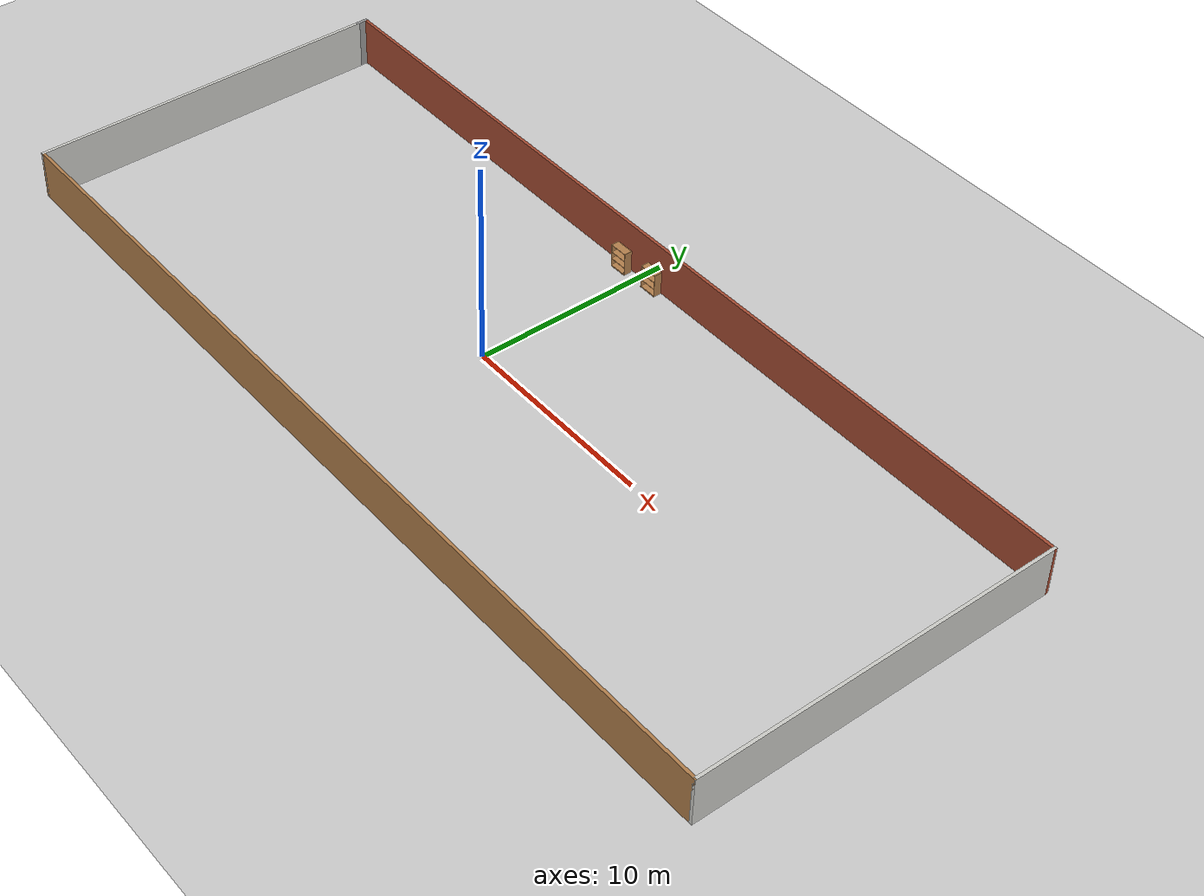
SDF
<sdf version="1.6">
 <world name="default">
  <light name="sun" type="directional">
   <pose>0 0 10 0 -0 0</pose>
   <diffuse>0.8 0.8 0.8 1</diffuse>
   <specular>0.2 0.2 0.2 1</specular>
   <attenuation>
    <range>1000</range>
    <constant>0.9</constant>
    <linear>0.01</linear>
    <quadratic>0.001</quadratic>
   </attenuation>
   <direction>-0.5 0.1 -0.9</direction>
  </light>
  <model name="ground_plane">
   <static>1</static>
   <link name="link">
    <collision name="collision">
     <geometry><plane><normal>0 0 1</normal><size>100 100</size></plane></geometry>
     <surface><friction><ode><mu>100</mu><mu2>50</mu2></ode></friction></surface>
    </collision>
    <visual name="visual">
     <cast_shadows>0</cast_shadows>
     <geometry><plane><normal>0 0 1</normal><size>100 100</size></plane></geometry>
     <material>
      <script><uri>file://media/materials/scripts/gazebo.material</uri><name>Gazebo/Grey</name></script>
     </material>
    </visual>
   </link>
  </model>
  <gravity>0 0 -9.8</gravity>
  <magnetic_field>6e-06 2.3e-05 -4.2e-05</magnetic_field>
  <atmosphere type="adiabatic"/>
  <physics name="default_physics" default="0" type="ode">
   <max_step_size>0.001</max_step_size>
   <real_time_factor>1</real_time_factor>
   <real_time_update_rate>1000</real_time_update_rate>
  </physics>
  <scene><ambient>0.4 0.4 0.4 1</ambient><background>0.7 0.7 0.7 1</background><shadows>1</shadows></scene>
  <spherical_coordinates>
   <surface_model>EARTH_WGS84</surface_model>
   <latitude_deg>0</latitude_deg>
   <longitude_deg>0</longitude_deg>
   <elevation>0</elevation>
   <heading_deg>0</heading_deg>
  </spherical_coordinates>
  <model name="indoor1">
   <pose>1.50485 -0.122518 0 0 -0 0</pose>
   <link name="Wall_1">
    <collision name="Wall_1_Collision">
     <geometry><box><size>17.75 0.15 2.5</size></box></geometry>
     <pose>0 0 1.25 0 -0 0</pose>
    </collision>
    <visual name="Wall_1_Visual">
     <pose>0 0 1.25 0 -0 0</pose>
     <geometry><box><size>17.75 0.15 2.5</size></box></geometry>
     <material>
      <script><uri>file://media/materials/scripts/gazebo.material</uri><name>Gazebo/CeilingTiled</name></script>
      <ambient>1 1 1 1</ambient>
     </material>
     <meta><layer>0</layer></meta>
    </visual>
    <pose>-22.8 -0.25 0 0 -0 -1.5708</pose>
   </link>
   <link name="Wall_2">
    <collision name="Wall_2_Collision">
     <geometry><box><size>45.75 0.15 2.5</size></box></geometry>
     <pose>0 0 1.25 0 -0 0</pose>
    </collision>
    <visual name="Wall_2_Visual">
     <pose>0 0 1.25 0 -0 0</pose>
     <geometry><box><size>45.75 0.15 2.5</size></box></geometry>
     <material>
      <script><uri>file://media/materials/scripts/gazebo.material</uri><name>Gazebo/Wood</name></script>
      <ambient>1 1 1 1</ambient>
     </material>
     <meta><layer>0</layer></meta>
    </visual>
    <pose>-0 -9.05 0 0 -0 0</pose>
   </link>
   <link name="Wall_3">
    <collision name="Wall_3_Collision">
     <geometry><box><size>18.25 0.15 2.5</size></box></geometry>
     <pose>0 0 1.25 0 -0 0</pose>
    </collision>
    <visual name="Wall_3_Visual">
     <pose>0 0 1.25 0 -0 0</pose>
     <geometry><box><size>18.25 0.15 2.5</size></box></geometry>
     <material>
      <script><uri>file://media/materials/scripts/gazebo.material</uri><name>Gazebo/CeilingTiled</name></script>
      <ambient>0.435294 0.796078 0.67451 1</ambient>
     </material>
     <meta><layer>0</layer></meta>
    </visual>
    <pose>22.8 0 0 0 -0 1.5708</pose>
   </link>
   <link name="Wall_4">
    <collision name="Wall_4_Collision">
     <geometry><box><size>45.75 0.15 2.5</size></box></geometry>
     <pose>0 0 1.25 0 -0 0</pose>
    </collision>
    <visual name="Wall_4_Visual">
     <pose>0 0 1.25 0 -0 0</pose>
     <geometry><box><size>45.75 0.15 2.5</size></box></geometry>
     <material>
      <script><uri>file://media/materials/scripts/gazebo.material</uri><name>Gazebo/Bricks</name></script>
      <ambient>1 1 1 1</ambient>
     </material>
     <meta><layer>0</layer></meta>
    </visual>
    <pose>-0 9.05 0 0 -0 3.14159</pose>
   </link>
   <link name="Wall_5">
    <collision name="Wall_5_Collision">
     <geometry><box><size>0.65 0.15 2.5</size></box></geometry>
     <pose>0 0 1.25 0 -0 0</pose>
    </collision>
    <visual name="Wall_5_Visual">
     <pose>0 0 1.25 0 -0 0</pose>
     <geometry><box><size>0.65 0.15 2.5</size></box></geometry>
     <material>
      <script><uri>file://media/materials/scripts/gazebo.material</uri><name>Gazebo/Grey</name></script>
      <ambient>1 1 1 1</ambient>
     </material>
     <meta><layer>0</layer></meta>
    </visual>
    <pose>-22.8 8.8 0 0 -0 -1.5708</pose>
   </link>
   <static>1</static>
  </model>
  <model name="bookshelf">
   <static>1</static>
   <link name="link">
    <inertial><mass>1</mass></inertial>
    <collision name="back">
     <pose>0 0.005 0.6 0 -0 0</pose>
     <geometry><box><size>0.9 0.01 1.2</size></box></geometry>
    </collision>
    <visual name="visual1">
     <pose>0 0.005 0.6 0 -0 0</pose>
     <geometry><box><size>0.9 0.01 1.2</size></box></geometry>
     <material>
      <script><uri>file://media/materials/scripts/gazebo.material</uri><name>Gazebo/Wood</name></script>
     </material>
    </visual>
    <collision name="left_side">
     <pose>0.45 -0.195 0.6 0 -0 0</pose>
     <geometry><box><size>0.02 0.4 1.2</size></box></geometry>
    </collision>
    <visual name="visual2">
     <pose>0.45 -0.195 0.6 0 -0 0</pose>
     <geometry><box><size>0.02 0.4 1.2</size></box></geometry>
     <material>
      <script><uri>file://media/materials/scripts/gazebo.material</uri><name>Gazebo/Wood</name></script>
     </material>
    </visual>
    <collision name="right_side">
     <pose>-0.45 -0.195 0.6 0 -0 0</pose>
     <geometry><box><size>0.02 0.4 1.2</size></box></geometry>
    </collision>
    <visual name="visual3">
     <pose>-0.45 -0.195 0.6 0 -0 0</pose>
     <geometry><box><size>0.02 0.4 1.2</size></box></geometry>
     <material>
      <script><uri>file://media/materials/scripts/gazebo.material</uri><name>Gazebo/Wood</name></script>
     </material>
    </visual>
    <collision name="bottom">
     <pose>0 -0.195 0.03 0 -0 0</pose>
     <geometry><box><size>0.88 0.4 0.06</size></box></geometry>
    </collision>
    <visual name="visual4">
     <pose>0 -0.195 0.03 0 -0 0</pose>
     <geometry><box><size>0.88 0.4 0.06</size></box></geometry>
     <material>
      <script><uri>file://media/materials/scripts/gazebo.material</uri><name>Gazebo/Wood</name></script>
     </material>
    </visual>
    <collision name="top">
     <pose>0 -0.195 1.19 0 -0 0</pose>
     <geometry><box><size>0.88 0.4 0.02</size></box></geometry>
    </collision>
    <visual name="visual5">
     <pose>0 -0.195 1.19 0 -0 0</pose>
     <geometry><box><size>0.88 0.4 0.02</size></box></geometry>
     <material>
      <script><uri>file://media/materials/scripts/gazebo.material</uri><name>Gazebo/Wood</name></script>
     </material>
    </visual>
    <collision name="low_shelf">
     <pose>0 -0.195 0.43 0 -0 0</pose>
     <geometry><box><size>0.88 0.4 0.02</size></box></geometry>
    </collision>
    <visual name="visual6">
     <pose>0 -0.195 0.43 0 -0 0</pose>
     <geometry><box><size>0.88 0.4 0.02</size></box></geometry>
     <material>
      <script><uri>file://media/materials/scripts/gazebo.material</uri><name>Gazebo/Wood</name></script>
     </material>
    </visual>
    <collision name="high_shelf">
     <pose>0 -0.195 0.8 0 -0 0</pose>
     <geometry><box><size>0.88 0.4 0.02</size></box></geometry>
    </collision>
    <visual name="visual7">
     <pose>0 -0.195 0.8 0 -0 0</pose>
     <geometry><box><size>0.88 0.4 0.02</size></box></geometry>
     <material>
      <script><uri>file://media/materials/scripts/gazebo.material</uri><name>Gazebo/Wood</name></script>
     </material>
    </visual>
   </link>
   <pose>-0.944803 8.7315 0 0 -0 0</pose>
  </model>
  <model name="bookshelf_0">
   <static>1</static>
   <link name="link">
    <inertial><mass>1</mass></inertial>
    <collision name="back">
     <pose>0 0.005 0.6 0 -0 0</pose>
     <geometry><box><size>0.9 0.01 1.2</size></box></geometry>
    </collision>
    <visual name="visual1">
     <pose>0 0.005 0.6 0 -0 0</pose>
     <geometry><box><size>0.9 0.01 1.2</size></box></geometry>
     <material>
      <script><uri>file://media/materials/scripts/gazebo.material</uri><name>Gazebo/Wood</name></script>
     </material>
    </visual>
    <collision name="left_side">
     <pose>0.45 -0.195 0.6 0 -0 0</pose>
     <geometry><box><size>0.02 0.4 1.2</size></box></geometry>
    </collision>
    <visual name="visual2">
     <pose>0.45 -0.195 0.6 0 -0 0</pose>
     <geometry><box><size>0.02 0.4 1.2</size></box></geometry>
     <material>
      <script><uri>file://media/materials/scripts/gazebo.material</uri><name>Gazebo/Wood</name></script>
     </material>
    </visual>
    <collision name="right_side">
     <pose>-0.45 -0.195 0.6 0 -0 0</pose>
     <geometry><box><size>0.02 0.4 1.2</size></box></geometry>
    </collision>
    <visual name="visual3">
     <pose>-0.45 -0.195 0.6 0 -0 0</pose>
     <geometry><box><size>0.02 0.4 1.2</size></box></geometry>
     <material>
      <script><uri>file://media/materials/scripts/gazebo.material</uri><name>Gazebo/Wood</name></script>
     </material>
    </visual>
    <collision name="bottom">
     <pose>0 -0.195 0.03 0 -0 0</pose>
     <geometry><box><size>0.88 0.4 0.06</size></box></geometry>
    </collision>
    <visual name="visual4">
     <pose>0 -0.195 0.03 0 -0 0</pose>
     <geometry><box><size>0.88 0.4 0.06</size></box></geometry>
     <material>
      <script><uri>file://media/materials/scripts/gazebo.material</uri><name>Gazebo/Wood</name></script>
     </material>
    </visual>
    <collision name="top">
     <pose>0 -0.195 1.19 0 -0 0</pose>
     <geometry><box><size>0.88 0.4 0.02</size></box></geometry>
    </collision>
    <visual name="visual5">
     <pose>0 -0.195 1.19 0 -0 0</pose>
     <geometry><box><size>0.88 0.4 0.02</size></box></geometry>
     <material>
      <script><uri>file://media/materials/scripts/gazebo.material</uri><name>Gazebo/Wood</name></script>
     </material>
    </visual>
    <collision name="low_shelf">
     <pose>0 -0.195 0.43 0 -0 0</pose>
     <geometry><box><size>0.88 0.4 0.02</size></box></geometry>
    </collision>
    <visual name="visual6">
     <pose>0 -0.195 0.43 0 -0 0</pose>
     <geometry><box><size>0.88 0.4 0.02</size></box></geometry>
     <material>
      <script><uri>file://media/materials/scripts/gazebo.material</uri><name>Gazebo/Wood</name></script>
     </material>
    </visual>
    <collision name="high_shelf">
     <pose>0 -0.195 0.8 0 -0 0</pose>
     <geometry><box><size>0.88 0.4 0.02</size></box></geometry>
    </collision>
    <visual name="visual7">
     <pose>0 -0.195 0.8 0 -0 0</pose>
     <geometry><box><size>0.88 0.4 0.02</size></box></geometry>
     <material>
      <script><uri>file://media/materials/scripts/gazebo.material</uri><name>Gazebo/Wood</name></script>
     </material>
    </visual>
   </link>
   <pose>1.00069 8.82284 0 0 -0 0</pose>
  </model>
 </world>
</sdf>
